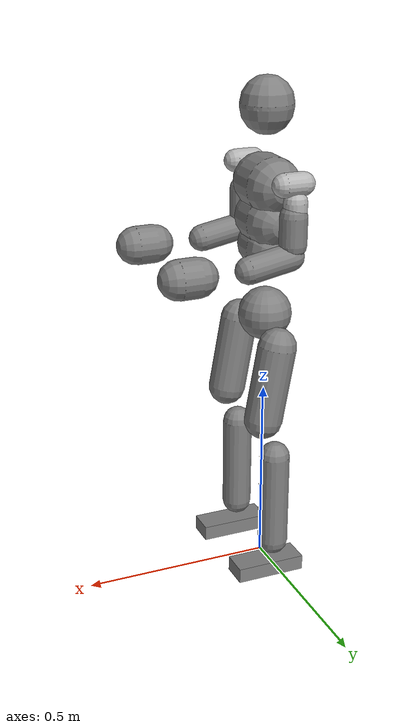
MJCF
<mujoco model="g1_29dof">
  <compiler angle="radian" meshdir="../mesh/G1/" />

  <worldbody>
    <body name="pelvis" pos="0 0 0.793">
      <inertial pos="0 0 -0.07605" quat="1 0 -0.000399148 0" mass="3.813" diaginertia="0.010549 0.0093089 0.0079184" />
      <joint name="floating_base_joint" type="free" limited="false" actuatorfrclimited="false" />
      <geom name="pelvis_collision" type="sphere" size="0.07" pos="0 0 -0.08" />
      <body name="head" pos="0 0 0.4">
        <geom name="head" type="sphere" size=".0001" density="0" />
      </body>
      <body name="left_hip_pitch_link" pos="0 0.064452 -0.1027">
        <inertial pos="0.002741 0.047791 -0.02606" quat="0.954862 0.293964 0.0302556 0.030122" mass="1.35" diaginertia="0.00181517 0.00153422 0.00116212" />
        <joint name="left_hip_pitch_joint" pos="0 0 0" axis="0 1 0" limited="true" range="-2.5307 2.8798" actuatorfrcrange="-88 88" stiffness="100" damping="10" armature="0.03" frictionloss="0.03" />
        <body name="left_hip_roll_link" pos="0 0.052 -0.030465" quat="0.996179 0 -0.0873386 0">
          <inertial pos="0.029812 -0.001045 -0.087934" quat="0.977808 -1.97119e-05 0.205576 -0.0403793" mass="1.52" diaginertia="0.00254986 0.00241169 0.00148755" />
          <joint name="left_hip_roll_joint" pos="0 0 0" axis="1 0 0" limited="true" range="-0.5236 2.9671" actuatorfrcrange="-88 88" stiffness="100" damping="10" armature="0.03" frictionloss="0.03" />
          <geom name="left_thigh" type="capsule" size="0.05" fromto="0.02 0 0 0.02 0 -0.2" />
          <body name="left_hip_yaw_link" pos="0.025001 0 -0.12412">
            <inertial pos="-0.057709 -0.010981 -0.15078" quat="0.600598 0.15832 0.223482 0.751181" mass="1.702" diaginertia="0.00776166 0.00717575 0.00160139" />
            <joint name="left_hip_yaw_joint" pos="0 0 0" axis="0 0 1" limited="true" range="-2.7576 2.7576" actuatorfrcrange="-88 88" stiffness="100" damping="10" armature="0.03" frictionloss="0.03" />
            <body name="left_knee_link" pos="-0.078273 0.0021489 -0.17734" quat="0.996179 0 0.0873386 0">
              <inertial pos="0.005457 0.003964 -0.12074" quat="0.923418 -0.0327699 0.0158246 0.382067" mass="1.932" diaginertia="0.0113804 0.0112778 0.00146458" />
              <joint name="left_knee_joint" pos="0 0 0" axis="0 1 0" limited="true" range="-0.087267 2.8798" actuatorfrcrange="-139 139" stiffness="200" damping="20" armature="0.03" frictionloss="0.03" />
              <geom name="left_shin" type="capsule" size="0.04" fromto="0.02 0 0 0.02 0 -0.25" />
              <body name="left_ankle_pitch_link" pos="0 -9.4445e-05 -0.30001">
                <inertial pos="-0.007269 0 0.011137" quat="0.603053 0.369225 0.369225 0.603053" mass="0.074" diaginertia="1.89e-05 1.40805e-05 6.9195e-06" />
                <joint name="left_ankle_pitch_joint" pos="0 0 0" axis="0 1 0" limited="true" range="-0.87267 0.5236" actuatorfrcrange="-50 50" stiffness="20" damping="2" armature="0.03" frictionloss="0.03" />
                <body name="left_ankle_roll_link" pos="0 0 -0.017558">
                  <inertial pos="0.026505 0 -0.016425" quat="-0.000481092 0.728482 -0.000618967 0.685065" mass="0.608" diaginertia="0.00167218 0.0016161 0.000217621" />
                  <joint name="left_ankle_roll_joint" pos="0 0 0" axis="1 0 0" limited="true" range="-0.2618 0.2618" actuatorfrcrange="-50 50" stiffness="20" damping="2" armature="0.03" frictionloss="0.03" />
                  <geom name="left_foot_collision" type="box" pos="0.039 0 -0.005" size="0.093 0.0365 0.02" />
                </body>
              </body>
            </body>
          </body>
        </body>
      </body>
      <body name="right_hip_pitch_link" pos="0 -0.064452 -0.1027">
        <inertial pos="0.002741 -0.047791 -0.02606" quat="0.954862 -0.293964 0.0302556 -0.030122" mass="1.35" diaginertia="0.00181517 0.00153422 0.00116212" />
        <joint name="right_hip_pitch_joint" pos="0 0 0" axis="0 1 0" limited="true" range="-2.5307 2.8798" actuatorfrcrange="-88 88" stiffness="100" damping="10" armature="0.03" frictionloss="0.03" />
        <body name="right_hip_roll_link" pos="0 -0.052 -0.030465" quat="0.996179 0 -0.0873386 0">
          <inertial pos="0.029812 0.001045 -0.087934" quat="0.977808 1.97119e-05 0.205576 0.0403793" mass="1.52" diaginertia="0.00254986 0.00241169 0.00148755" />
          <joint name="right_hip_roll_joint" pos="0 0 0" axis="1 0 0" limited="true" range="-2.9671 0.5236" actuatorfrcrange="-88 88" stiffness="100" damping="10" armature="0.03" frictionloss="0.03" />
          <geom name="right_thigh" type="capsule" size="0.05" fromto="0.02 0 0 0.02 0 -0.2" />
          <body name="right_hip_yaw_link" pos="0.025001 0 -0.12412">
            <inertial pos="-0.057709 0.010981 -0.15078" quat="0.751181 0.223482 0.15832 0.600598" mass="1.702" diaginertia="0.00776166 0.00717575 0.00160139" />
            <joint name="right_hip_yaw_joint" pos="0 0 0" axis="0 0 1" limited="true" range="-2.7576 2.7576" actuatorfrcrange="-88 88" stiffness="100" damping="10" armature="0.03" frictionloss="0.03" />
            <body name="right_knee_link" pos="-0.078273 -0.0021489 -0.17734" quat="0.996179 0 0.0873386 0">
              <inertial pos="0.005457 -0.003964 -0.12074" quat="0.923439 0.0345276 0.0116333 -0.382012" mass="1.932" diaginertia="0.011374 0.0112843 0.00146452" />
              <joint name="right_knee_joint" pos="0 0 0" axis="0 1 0" limited="true" range="-0.087267 2.8798" actuatorfrcrange="-139 139" stiffness="200" damping="20" armature="0.03" frictionloss="0.03" />
              <geom name="right_shin" type="capsule" size="0.04" fromto="0.02 0 0 0.02 0 -0.25" />
              <body name="right_ankle_pitch_link" pos="0 9.4445e-05 -0.30001">
                <inertial pos="-0.007269 0 0.011137" quat="0.603053 0.369225 0.369225 0.603053" mass="0.074" diaginertia="1.89e-05 1.40805e-05 6.9195e-06" />
                <joint name="right_ankle_pitch_joint" pos="0 0 0" axis="0 1 0" limited="true" range="-0.87267 0.5236" actuatorfrcrange="-50 50" stiffness="20" damping="2" armature="0.03" frictionloss="0.03" />
                <body name="right_ankle_roll_link" pos="0 0 -0.017558">
                  <inertial pos="0.026505 0 -0.016425" quat="0.000481092 0.728482 0.000618967 0.685065" mass="0.608" diaginertia="0.00167218 0.0016161 0.000217621" />
                  <joint name="right_ankle_roll_joint" pos="0 0 0" axis="1 0 0" limited="true" range="-0.2618 0.2618" actuatorfrcrange="-50 50" stiffness="20" damping="2" armature="0.03" frictionloss="0.03" />
                  <geom name="right_foot_collision" type="box" pos="0.039 0 -0.005" size="0.093 0.0365 0.02" />
                </body>
              </body>
            </body>
          </body>
        </body>
      </body>
      <body name="waist_yaw_link">
        <inertial pos="0.003494 0.000233 0.018034" quat="0.289697 0.591001 -0.337795 0.672821" mass="0.214" diaginertia="0.000163531 0.000107714 0.000102205" />
        <joint name="waist_yaw_joint" pos="0 0 0" axis="0 0 1" limited="true" range="-2.618 2.618" actuatorfrcrange="-88 88" stiffness="400" damping="40" armature="0.03" frictionloss="0.03" />
        <body name="waist_roll_link" pos="-0.0039635 0 0.044">
          <inertial pos="0 2.3e-05 0" quat="0.5 0.5 -0.5 0.5" mass="0.086" diaginertia="8.245e-06 7.079e-06 6.339e-06" />
          <joint name="waist_roll_joint" pos="0 0 0" axis="1 0 0" limited="true" range="-0.52 0.52" actuatorfrcrange="-50 50" stiffness="400" damping="40" armature="0.03" frictionloss="0.03" />
          <body name="torso_link">
            <inertial pos="0.00203158 0.000339683 0.184568" quat="0.999803 -6.03319e-05 0.0198256 0.00131986" mass="7.818" diaginertia="0.121847 0.109825 0.0273735" />
            <joint name="waist_pitch_joint" pos="0 0 0" axis="0 1 0" limited="true" range="-0.52 0.52" actuatorfrcrange="-50 50" stiffness="400" damping="40" armature="0.03" frictionloss="0.03" />
            <geom name="torso_collision1" type="capsule" size="0.073" fromto="0.005 -0.032 .22 0.005 0.032 .22" />
            <geom name="torso_collision2" type="capsule" size="0.07" fromto="0.005 -0.028 .13 0.005 0.028 .13" />
            <geom name="torso_collision3" type="capsule" size="0.065" fromto="0.005 -0.02 .06 0.005 0.02 .06" />
            <geom name="head_collision" type="capsule" size="0.068" fromto="0.01 0 .41 0.01 0 .42" />
            <body name="left_shoulder_pitch_link" pos="0.0039563 0.10022 0.24778" quat="0.990264 0.139201 1.38722e-05 -9.86868e-05">
              <inertial pos="0 0.035892 -0.011628" quat="0.654152 0.0130458 -0.326267 0.68225" mass="0.718" diaginertia="0.000465864 0.000432842 0.000406394" />
              <joint name="left_shoulder_pitch_joint" pos="0 0 0" axis="0 1 0" limited="true" range="-3.0892 2.6704" actuatorfrcrange="-25 25" stiffness="90" damping="9" armature="0.03" frictionloss="0.03" />
              <geom type="capsule" size="0.03" fromto="-0.025 0.04 -0.01 0.025 0.04 -0.01" rgba="0.7 0.7 0.7 1" />
              <body name="left_shoulder_roll_link" pos="0 0.038 -0.013831" quat="0.990268 -0.139172 0 0">
                <inertial pos="-0.000227 0.00727 -0.063243" quat="0.701256 -0.0196223 -0.00710317 0.712604" mass="0.643" diaginertia="0.000691311 0.000618011 0.000388977" />
                <joint name="left_shoulder_roll_joint" pos="0 0 0" axis="1 0 0" limited="true" range="-1.5882 2.2515" actuatorfrcrange="-25 25" stiffness="60" damping="6" armature="0.03" frictionloss="0.03" />
                <geom type="capsule" size="0.03" fromto="-0.004 0.006 -0.068 -0.004 0.006 -0.038" rgba="0.7 0.7 0.7 1" />
                <body name="left_shoulder_yaw_link" pos="0 0.00624 -0.1032">
                  <inertial pos="0.010773 -0.002949 -0.072009" quat="0.716879 -0.0964829 -0.0679942 0.687134" mass="0.734" diaginertia="0.00106187 0.00103217 0.000400661" />
                  <joint name="left_shoulder_yaw_joint" pos="0 0 0" axis="0 0 1" limited="true" range="-2.618 2.618" actuatorfrcrange="-25 25" stiffness="20" damping="2" armature="0.03" frictionloss="0.03" />
                  <geom name="left_shoulder_yaw_collision" type="capsule" size="0.035" fromto="0 0 -0.04 0 0 0.03" />
                  <body name="left_elbow_link" pos="0.015783 0 -0.080518">
                    <inertial pos="0.064956 0.004454 -0.010062" quat="0.541765 0.636132 0.388821 0.388129" mass="0.6" diaginertia="0.000443035 0.000421612 0.000259353" />
                    <joint name="left_elbow_joint" pos="0 0 0" axis="0 1 0" limited="true" range="-1.0472 2.0944" actuatorfrcrange="-25 25" stiffness="60" damping="6" armature="0.03" frictionloss="0.03" />
                    <geom name="left_elbow_yaw_collision" type="capsule" size="0.035" fromto="-0.01 0 0.01 0.1 0 -0.01" />
                    <body name="left_wrist_roll_link" pos="0.1 0.00188791 -0.01">
                      <inertial pos="0.0171394 0.000537591 4.8864e-07" quat="0.575338 0.411667 -0.574906 0.411094" mass="0.085445" diaginertia="5.48211e-05 4.96646e-05 3.57798e-05" />
                      <joint name="left_wrist_roll_joint" pos="0 0 0" axis="1 0 0" limited="true" range="-1.97222 1.97222" actuatorfrcrange="-25 25" stiffness="4.0" damping="0.4" armature="0.03" frictionloss="0.03" />
                      <body name="left_wrist_pitch_link" pos="0.038 0 0">
                        <inertial pos="0.0229999 -0.00111685 -0.00111658" quat="0.249998 0.661363 0.293036 0.643608" mass="0.48405" diaginertia="0.000430353 0.000429873 0.000164648" />
                        <joint name="left_wrist_pitch_joint" pos="0 0 0" axis="0 1 0" limited="true" range="-1.61443 1.61443" actuatorfrcrange="-5 5" stiffness="4.0" damping="0.4" armature="0.03" frictionloss="0.03" />
                        <body name="left_wrist_yaw_link" pos="0.046 0 0">
                          <inertial pos="0.0708244 0.000191745 0.00161742" quat="0.510571 0.526295 0.468078 0.493188" mass="0.254576" diaginertia="0.000646113 0.000559993 0.000147566" />
                          <joint name="left_wrist_yaw_joint" pos="0 0 0" axis="0 0 1" limited="true" range="-1.61443 1.61443" actuatorfrcrange="-5 5" stiffness="4.0" damping="0.4" armature="0.03" frictionloss="0.03" />
                          <geom name="left_hand_collision" type="capsule" size="0.05" fromto="0.05 0 0 0.1 0 0" />
                          <body name="left_rubber_hand" pos="0.12 0 0.0">
                            <geom name="left_rubber_hand" group="1" type="sphere" size=".0001" density="0" />
                          </body>
                        </body>
                      </body>
                    </body>
                  </body>
                </body>
              </body>
            </body>
            <body name="right_shoulder_pitch_link" pos="0.0039563 -0.10021 0.24778" quat="0.990264 -0.139201 1.38722e-05 9.86868e-05">
              <inertial pos="0 -0.035892 -0.011628" quat="0.68225 -0.326267 0.0130458 0.654152" mass="0.718" diaginertia="0.000465864 0.000432842 0.000406394" />
              <joint name="right_shoulder_pitch_joint" pos="0 0 0" axis="0 1 0" limited="true" range="-3.0892 2.6704" actuatorfrcrange="-25 25" stiffness="90" damping="9" armature="0.03" frictionloss="0.03" />
              <geom type="capsule" size="0.03" fromto="-0.025 -0.04 -0.01 0.025 -0.04 -0.01" rgba="0.7 0.7 0.7 1" />
              <body name="right_shoulder_roll_link" pos="0 -0.038 -0.013831" quat="0.990268 0.139172 0 0">
                <inertial pos="-0.000227 -0.00727 -0.063243" quat="0.712604 -0.00710317 -0.0196223 0.701256" mass="0.643" diaginertia="0.000691311 0.000618011 0.000388977" />
                <joint name="right_shoulder_roll_joint" pos="0 0 0" axis="1 0 0" limited="true" range="-2.2515 1.5882" actuatorfrcrange="-25 25" stiffness="60" damping="6" armature="0.03" frictionloss="0.03" />
                <geom type="capsule" size="0.03" fromto="-0.004 -0.006 -0.068 -0.004 -0.006 -0.038" rgba="0.7 0.7 0.7 1" />
                <body name="right_shoulder_yaw_link" pos="0 -0.00624 -0.1032">
                  <inertial pos="0.010773 0.002949 -0.072009" quat="0.687134 -0.0679942 -0.0964829 0.716879" mass="0.734" diaginertia="0.00106187 0.00103217 0.000400661" />
                  <joint name="right_shoulder_yaw_joint" pos="0 0 0" axis="0 0 1" limited="true" range="-2.618 2.618" actuatorfrcrange="-25 25" stiffness="20" damping="2" armature="0.03" frictionloss="0.03" />
                  <geom name="right_shoulder_yaw_collision" type="capsule" size="0.035" fromto="0 0 -0.04 0 0 0.03" />
                  <body name="right_elbow_link" pos="0.015783 0 -0.080518">
                    <inertial pos="0.064956 -0.004454 -0.010062" quat="0.388129 0.388821 0.636132 0.541765" mass="0.6" diaginertia="0.000443035 0.000421612 0.000259353" />
                    <joint name="right_elbow_joint" pos="0 0 0" axis="0 1 0" limited="true" range="-1.0472 2.0944" actuatorfrcrange="-25 25" stiffness="60" damping="6" armature="0.03" frictionloss="0.03" />
                    <geom name="right_elbow_yaw_collision" type="capsule" size="0.035" fromto="-0.01 0 0.01 0.10 0 -0.01" />
                    <body name="right_wrist_roll_link" pos="0.1 -0.00188791 -0.01">
                      <inertial pos="0.0171394 -0.000537591 4.8864e-07" quat="0.411667 0.575338 -0.411094 0.574906" mass="0.085445" diaginertia="5.48211e-05 4.96646e-05 3.57798e-05" />
                      <joint name="right_wrist_roll_joint" pos="0 0 0" axis="1 0 0" limited="true" range="-1.97222 1.97222" actuatorfrcrange="-25 25" stiffness="4.0" damping="0.4" armature="0.03" frictionloss="0.03" />
                      <body name="right_wrist_pitch_link" pos="0.038 0 0">
                        <inertial pos="0.0229999 0.00111685 -0.00111658" quat="0.643608 0.293036 0.661363 0.249998" mass="0.48405" diaginertia="0.000430353 0.000429873 0.000164648" />
                        <joint name="right_wrist_pitch_joint" pos="0 0 0" axis="0 1 0" limited="true" range="-1.61443 1.61443" actuatorfrcrange="-5 5" stiffness="4.0" damping="0.4" armature="0.03" frictionloss="0.03" />
                        <body name="right_wrist_yaw_link" pos="0.046 0 0">
                          <inertial pos="0.0708244 -0.000191745 0.00161742" quat="0.493188 0.468078 0.526295 0.510571" mass="0.254576" diaginertia="0.000646113 0.000559993 0.000147566" />
                          <joint name="right_wrist_yaw_joint" pos="0 0 0" axis="0 0 1" limited="true" range="-1.61443 1.61443" actuatorfrcrange="-5 5" stiffness="4.0" damping="0.4" armature="0.03" frictionloss="0.03" />
                          <geom name="right_hand_collision" type="capsule" size="0.05" fromto="0.05 0 0 0.1 0 0" />
                          <body name="right_rubber_hand" pos="0.12 0 0.0">
                            <geom name="right_rubber_hand" group="1" type="sphere" size=".0001" density="0" />
                          </body>
                        </body>
                      </body>
                    </body>
                  </body>
                </body>
              </body>
            </body>
          </body>
        </body>
      </body>
    </body>
  </worldbody>

  <actuator>
    <motor name="left_hip_pitch_joint" joint="left_hip_pitch_joint" />
    <motor name="left_hip_roll_joint" joint="left_hip_roll_joint" />
    <motor name="left_hip_yaw_joint" joint="left_hip_yaw_joint" />
    <motor name="left_knee_joint" joint="left_knee_joint" />
    <motor name="left_ankle_pitch_joint" joint="left_ankle_pitch_joint" />
    <motor name="left_ankle_roll_joint" joint="left_ankle_roll_joint" />
    <motor name="right_hip_pitch_joint" joint="right_hip_pitch_joint" />
    <motor name="right_hip_roll_joint" joint="right_hip_roll_joint" />
    <motor name="right_hip_yaw_joint" joint="right_hip_yaw_joint" />
    <motor name="right_knee_joint" joint="right_knee_joint" />
    <motor name="right_ankle_pitch_joint" joint="right_ankle_pitch_joint" />
    <motor name="right_ankle_roll_joint" joint="right_ankle_roll_joint" />
    <motor name="waist_yaw_joint" joint="waist_yaw_joint" />
    <motor name="waist_roll_joint" joint="waist_roll_joint" />
    <motor name="waist_pitch_joint" joint="waist_pitch_joint" />
    <motor name="left_shoulder_pitch_joint" joint="left_shoulder_pitch_joint" />
    <motor name="left_shoulder_roll_joint" joint="left_shoulder_roll_joint" />
    <motor name="left_shoulder_yaw_joint" joint="left_shoulder_yaw_joint" />
    <motor name="left_elbow_joint" joint="left_elbow_joint" />
    <motor name="left_wrist_roll_joint" joint="left_wrist_roll_joint" />
    <motor name="left_wrist_pitch_joint" joint="left_wrist_pitch_joint" />
    <motor name="left_wrist_yaw_joint" joint="left_wrist_yaw_joint" />
    <motor name="right_shoulder_pitch_joint" joint="right_shoulder_pitch_joint" />
    <motor name="right_shoulder_roll_joint" joint="right_shoulder_roll_joint" />
    <motor name="right_shoulder_yaw_joint" joint="right_shoulder_yaw_joint" />
    <motor name="right_elbow_joint" joint="right_elbow_joint" />
    <motor name="right_wrist_roll_joint" joint="right_wrist_roll_joint" />
    <motor name="right_wrist_pitch_joint" joint="right_wrist_pitch_joint" />
    <motor name="right_wrist_yaw_joint" joint="right_wrist_yaw_joint" />
  </actuator>

  <sensor>
    <gyro name="imu-angular-velocity" site="imu" noise="5e-4" cutoff="34.9" />
    <accelerometer name="imu-linear-acceleration" site="imu" noise="1e-2" cutoff="157" />
  </sensor>

</mujoco>
